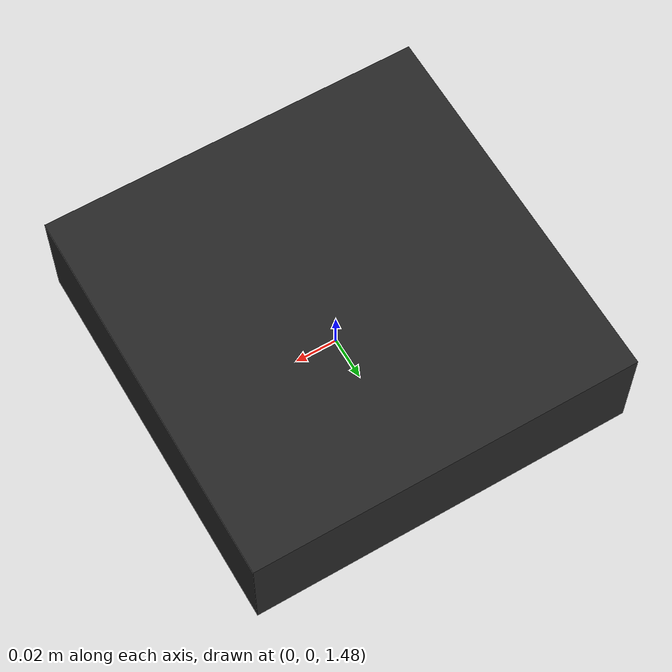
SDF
<?xml version="1.0"?>
<sdf version="1.10">
  <model name="camera_rig">
    <static>true</static>
    <pose>0 0 1.5 0 0 0</pose>

    <link name="base_link">
      <visual name="body_visual">
        <geometry>
          <box>
            <size>0.18 0.18 0.05</size>
          </box>
        </geometry>
        <material>
          <ambient>0.1 0.1 0.1 1</ambient>
          <diffuse>0.15 0.15 0.15 1</diffuse>
        </material>
      </visual>

      <sensor name="stereo_left" type="camera">
        <pose>0.09 0.05 0 0 0 0</pose>
        <topic>stereo/left</topic>
        <update_rate>10</update_rate>
        <always_on>1</always_on>
        <visualize>false</visualize>
        <camera>
          <horizontal_fov>1.5708</horizontal_fov>
          <image>
            <width>1280</width>
            <height>720</height>
            <format>R8G8B8</format>
          </image>
          <clip>
            <near>0.05</near>
            <far>200</far>
          </clip>
          <optical_frame_id>stereo_left_optical</optical_frame_id>
          <camera_info_topic>stereo/left/camera_info</camera_info_topic>
        </camera>
      </sensor>

      <sensor name="stereo_left_depth" type="depth_camera">
        <pose>0.09 0.05 0 0 0 0</pose>
        <topic>stereo/left/depth</topic>
        <update_rate>10</update_rate>
        <always_on>1</always_on>
        <visualize>false</visualize>
        <camera>
          <horizontal_fov>1.5708</horizontal_fov>
          <image>
            <width>1280</width>
            <height>720</height>
            <format>R_FLOAT32</format>
          </image>
          <clip>
            <near>0.05</near>
            <far>200</far>
          </clip>
          <optical_frame_id>stereo_left_optical</optical_frame_id>
        </camera>
      </sensor>

      <sensor name="stereo_right" type="camera">
        <pose>0.09 -0.05 0 0 0 0</pose>
        <topic>stereo/right</topic>
        <update_rate>10</update_rate>
        <always_on>1</always_on>
        <visualize>false</visualize>
        <camera>
          <horizontal_fov>1.5708</horizontal_fov>
          <image>
            <width>1280</width>
            <height>720</height>
            <format>R8G8B8</format>
          </image>
          <clip>
            <near>0.05</near>
            <far>200</far>
          </clip>
          <optical_frame_id>stereo_right_optical</optical_frame_id>
          <camera_info_topic>stereo/right/camera_info</camera_info_topic>
        </camera>
      </sensor>

      <sensor name="segmentation_semantic" type="segmentation">
        <pose>0.09 0 0 0 0 0</pose>
        <topic>segmentation/semantic</topic>
        <update_rate>10</update_rate>
        <always_on>1</always_on>
        <visualize>false</visualize>
        <camera>
          <segmentation_type>semantic</segmentation_type>
          <horizontal_fov>1.5708</horizontal_fov>
          <image>
            <width>1280</width>
            <height>720</height>
          </image>
          <clip>
            <near>0.05</near>
            <far>200</far>
          </clip>
          <optical_frame_id>segmentation_optical</optical_frame_id>
        </camera>
      </sensor>
    </link>
  </model>
</sdf>
